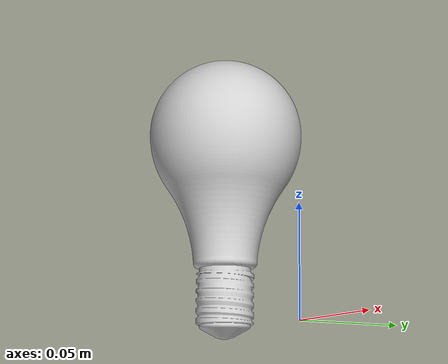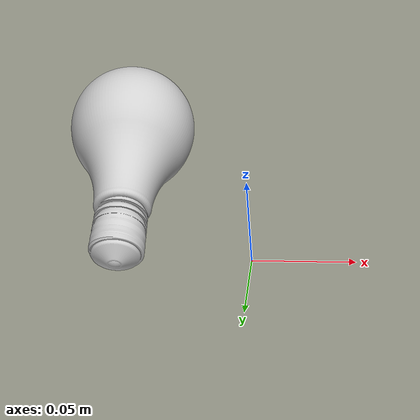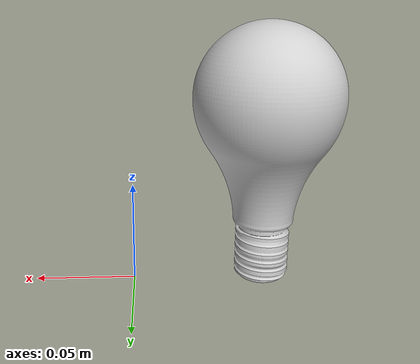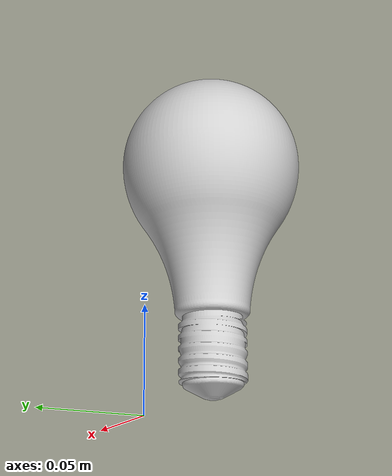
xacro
<?xml version="1.0"?>
<robot name="lamp">

    <link name="base_link">
      <visual>
        <origin rpy="0 0 0" xyz="0 0 0"/>
        <material name="gray">
          <color rgba="0.8 .8 0.8 1"/>
        </material>
        <geometry>
          <mesh filename="package://aerial_robot_model/urdf/other_objects/lamp.stl" scale=".03 .03 .03"/>
        </geometry>.
      </visual>
    </link>

</robot>
